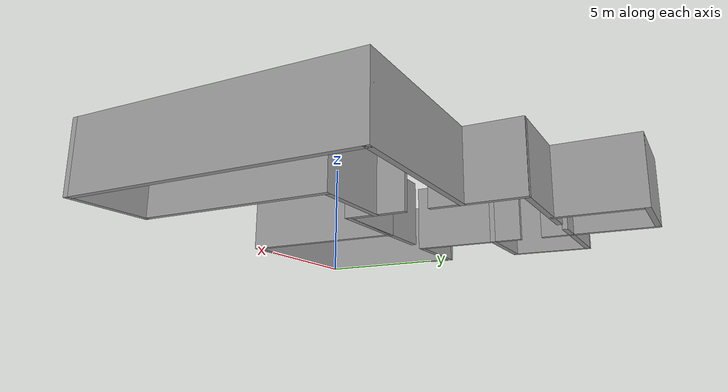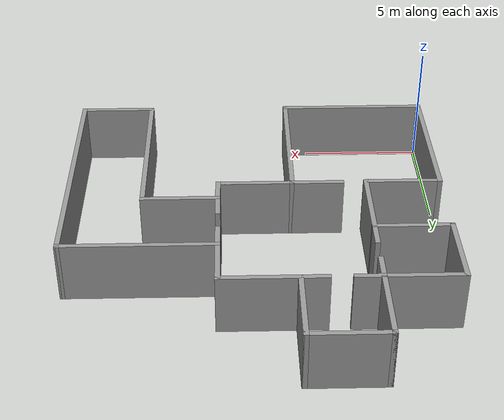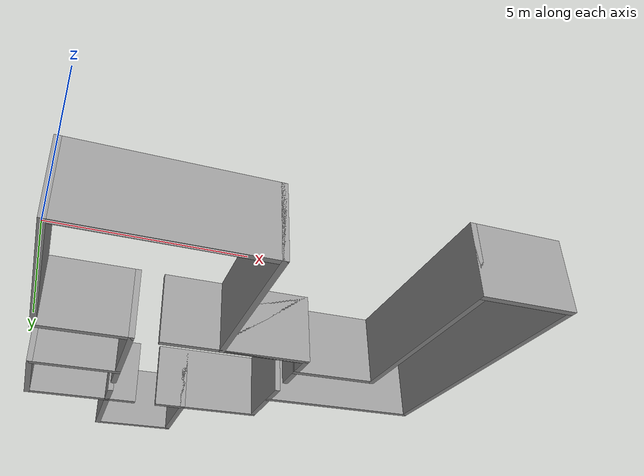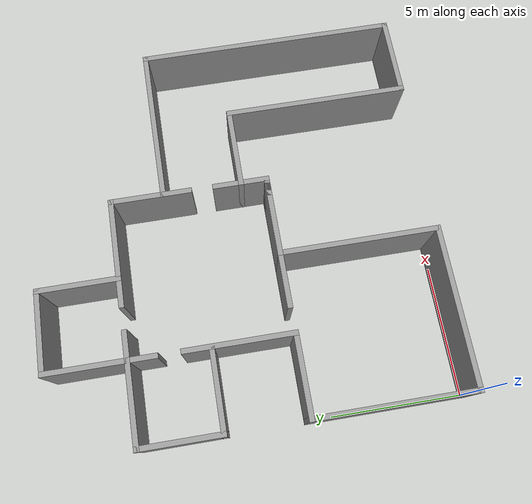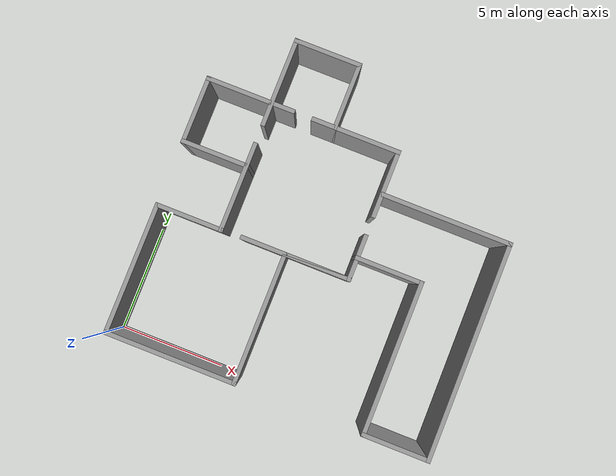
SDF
<?xml version='1.0'?>
<sdf version='1.6'>
  <model name='Floorplan'>
    <pose frame=''>7.5 7.5 0 0 -0 0</pose>
    <link name='Wall_0'>
      <collision name='Wall_0_Collision'>
        <geometry>
          <box>
            <size>6.2 0.2 2.5</size>
          </box>
        </geometry>
        <pose frame=''>0 0 1.25 0 -0 0</pose>
      </collision>
      <visual name='Wall_0_Visual'>
        <pose frame=''>0 0 1.25 0 -0 0</pose>
        <geometry>
          <box>
            <size>6.2 0.2 2.5</size>
          </box>
        </geometry>
        <material>
          <script>
            <uri>file://media/materials/scripts/gazebo.material</uri>
            <name>Gazebo/Grey</name>
          </script>
          <ambient>1 1 1 1</ambient>
        </material>
        <meta>
          <layer>0</layer>
        </meta>
      </visual>
      <pose frame=''>-4.5 -7.5 0 0 -0 0</pose>
    </link>
    <link name='Wall_10'>
      <collision name='Wall_10_Collision'>
        <geometry>
          <box>
            <size>3.2 0.2 2.5</size>
          </box>
        </geometry>
        <pose frame=''>0 0 1.25 0 -0 0</pose>
      </collision>
      <visual name='Wall_10_Visual'>
        <pose frame=''>0 0 1.25 0 -0 0</pose>
        <geometry>
          <box>
            <size>3.2 0.2 2.5</size>
          </box>
        </geometry>
        <material>
          <script>
            <uri>file://media/materials/scripts/gazebo.material</uri>
            <name>Gazebo/Grey</name>
          </script>
          <ambient>1 1 1 1</ambient>
        </material>
        <meta>
          <layer>0</layer>
        </meta>
      </visual>
      <pose frame=''>-6 -1.5345 0 0 -0 0</pose>
    </link>
    <link name='Wall_12'>
      <collision name='Wall_12_Collision'>
        <geometry>
          <box>
            <size>4.23452 0.2 2.5</size>
          </box>
        </geometry>
        <pose frame=''>0 0 1.25 0 -0 0</pose>
      </collision>
      <visual name='Wall_12_Visual'>
        <pose frame=''>0 0 1.25 0 -0 0</pose>
        <geometry>
          <box>
            <size>4.23452 0.2 2.5</size>
          </box>
        </geometry>
        <material>
          <script>
            <uri>file://media/materials/scripts/gazebo.material</uri>
            <name>Gazebo/Grey</name>
          </script>
          <ambient>1 1 1 1</ambient>
        </material>
        <meta>
          <layer>0</layer>
        </meta>
      </visual>
      <pose frame=''>-4.5 0.482753 0 0 -0 1.5708</pose>
    </link>
    <link name='Wall_14'>
      <collision name='Wall_14_Collision'>
        <geometry>
          <box>
            <size>3.2 0.2 2.5</size>
          </box>
        </geometry>
        <pose frame=''>0 0 1.25 0 -0 0</pose>
      </collision>
      <visual name='Wall_14_Visual'>
        <pose frame=''>0 0 1.25 0 -0 0</pose>
        <geometry>
          <box>
            <size>3.2 0.2 2.5</size>
          </box>
        </geometry>
        <material>
          <script>
            <uri>file://media/materials/scripts/gazebo.material</uri>
            <name>Gazebo/Grey</name>
          </script>
          <ambient>1 1 1 1</ambient>
        </material>
        <meta>
          <layer>0</layer>
        </meta>
      </visual>
      <pose frame=''>-6 1.5 0 0 -0 3.14159</pose>
    </link>
    <link name='Wall_16'>
      <collision name='Wall_16_Collision'>
        <geometry>
          <box>
            <size>3.2 0.2 2.5</size>
          </box>
        </geometry>
        <pose frame=''>0 0 1.25 0 -0 0</pose>
      </collision>
      <visual name='Wall_16_Visual'>
        <pose frame=''>0 0 1.25 0 -0 0</pose>
        <geometry>
          <box>
            <size>3.2 0.2 2.5</size>
          </box>
        </geometry>
        <material>
          <script>
            <uri>file://media/materials/scripts/gazebo.material</uri>
            <name>Gazebo/Grey</name>
          </script>
          <ambient>1 1 1 1</ambient>
        </material>
        <meta>
          <layer>0</layer>
        </meta>
      </visual>
      <pose frame=''>-7.5 3 0 0 -0 1.5708</pose>
    </link>
    <link name='Wall_18'>
      <collision name='Wall_18_Collision'>
        <geometry>
          <box>
            <size>3.2 0.2 2.5</size>
          </box>
        </geometry>
        <pose frame=''>0 0 1.25 0 -0 0</pose>
      </collision>
      <visual name='Wall_18_Visual'>
        <pose frame=''>0 0 1.25 0 -0 0</pose>
        <geometry>
          <box>
            <size>3.2 0.2 2.5</size>
          </box>
        </geometry>
        <material>
          <script>
            <uri>file://media/materials/scripts/gazebo.material</uri>
            <name>Gazebo/Grey</name>
          </script>
          <ambient>1 1 1 1</ambient>
        </material>
        <meta>
          <layer>0</layer>
        </meta>
      </visual>
      <pose frame=''>-6 4.5 0 0 -0 0</pose>
    </link>
    <link name='Wall_2'>
      <collision name='Wall_2_Collision'>
        <geometry>
          <box>
            <size>6.16551 0.2 2.5</size>
          </box>
        </geometry>
        <pose frame=''>0 0 1.25 0 -0 0</pose>
      </collision>
      <visual name='Wall_2_Visual'>
        <pose frame=''>0 0 1.25 0 -0 0</pose>
        <geometry>
          <box>
            <size>6.16551 0.2 2.5</size>
          </box>
        </geometry>
        <material>
          <script>
            <uri>file://media/materials/scripts/gazebo.material</uri>
            <name>Gazebo/Grey</name>
          </script>
          <ambient>1 1 1 1</ambient>
        </material>
        <meta>
          <layer>0</layer>
        </meta>
      </visual>
      <pose frame=''>-7.5 -4.51725 0 0 -0 1.5708</pose>
    </link>
    <link name='Wall_20'>
      <collision name='Wall_20_Collision'>
        <geometry>
          <box>
            <size>4.2 0.2 2.5</size>
          </box>
        </geometry>
        <pose frame=''>0 0 1.25 0 -0 0</pose>
      </collision>
      <visual name='Wall_20_Visual'>
        <pose frame=''>0 0 1.25 0 -0 0</pose>
        <geometry>
          <box>
            <size>4.2 0.2 2.5</size>
          </box>
        </geometry>
        <material>
          <script>
            <uri>file://media/materials/scripts/gazebo.material</uri>
            <name>Gazebo/Grey</name>
          </script>
          <ambient>1 1 1 1</ambient>
        </material>
        <meta>
          <layer>0</layer>
        </meta>
      </visual>
      <pose frame=''>-4.5 5.5 0 0 -0 1.5708</pose>
    </link>
    <link name='Wall_23'>
      <collision name='Wall_23_Collision'>
        <geometry>
          <box>
            <size>3.2 0.2 2.5</size>
          </box>
        </geometry>
        <pose frame=''>0 0 1.25 0 -0 0</pose>
      </collision>
      <visual name='Wall_23_Visual'>
        <pose frame=''>0 0 1.25 0 -0 0</pose>
        <geometry>
          <box>
            <size>3.2 0.2 2.5</size>
          </box>
        </geometry>
        <material>
          <script>
            <uri>file://media/materials/scripts/gazebo.material</uri>
            <name>Gazebo/Grey</name>
          </script>
          <ambient>1 1 1 1</ambient>
        </material>
        <meta>
          <layer>0</layer>
        </meta>
      </visual>
      <pose frame=''>-3 7.5 0 0 -0 0</pose>
    </link>
    <link name='Wall_25'>
      <collision name='Wall_25_Collision'>
        <geometry>
          <box>
            <size>3.2 0.2 2.5</size>
          </box>
        </geometry>
        <pose frame=''>0 0 1.25 0 -0 0</pose>
      </collision>
      <visual name='Wall_25_Visual'>
        <pose frame=''>0 0 1.25 0 -0 0</pose>
        <geometry>
          <box>
            <size>3.2 0.2 2.5</size>
          </box>
        </geometry>
        <material>
          <script>
            <uri>file://media/materials/scripts/gazebo.material</uri>
            <name>Gazebo/Grey</name>
          </script>
          <ambient>1 1 1 1</ambient>
        </material>
        <meta>
          <layer>0</layer>
        </meta>
      </visual>
      <pose frame=''>-1.5 6 0 0 -0 -1.5708</pose>
    </link>
    <link name='Wall_27'>
      <collision name='Wall_27_Collision'>
        <geometry>
          <box>
            <size>1.2 0.2 2.5</size>
          </box>
        </geometry>
        <pose frame=''>0 0 1.25 0 -0 0</pose>
      </collision>
      <visual name='Wall_27_Visual'>
        <pose frame=''>0 0 1.25 0 -0 0</pose>
        <geometry>
          <box>
            <size>1.2 0.2 2.5</size>
          </box>
        </geometry>
        <material>
          <script>
            <uri>file://media/materials/scripts/gazebo.material</uri>
            <name>Gazebo/Grey</name>
          </script>
          <ambient>1 1 1 1</ambient>
        </material>
        <meta>
          <layer>0</layer>
        </meta>
      </visual>
      <pose frame=''>-4 4.5 0 0 -0 0</pose>
    </link>
    <link name='Wall_29'>
      <collision name='Wall_29_Collision'>
        <geometry>
          <box>
            <size>4.2 0.2 2.5</size>
          </box>
        </geometry>
        <pose frame=''>0 0 1.25 0 -0 0</pose>
      </collision>
      <visual name='Wall_29_Visual'>
        <pose frame=''>0 0 1.25 0 -0 0</pose>
        <geometry>
          <box>
            <size>4.2 0.2 2.5</size>
          </box>
        </geometry>
        <material>
          <script>
            <uri>file://media/materials/scripts/gazebo.material</uri>
            <name>Gazebo/Grey</name>
          </script>
          <ambient>1 1 1 1</ambient>
        </material>
        <meta>
          <layer>0</layer>
        </meta>
      </visual>
      <pose frame=''>-0.5 4.5 0 0 -0 0</pose>
    </link>
    <link name='Wall_31'>
      <collision name='Wall_31_Collision'>
        <geometry>
          <box>
            <size>5.2 0.2 2.5</size>
          </box>
        </geometry>
        <pose frame=''>0 0 1.25 0 -0 0</pose>
      </collision>
      <visual name='Wall_31_Visual'>
        <pose frame=''>0 0 1.25 0 -0 0</pose>
        <geometry>
          <box>
            <size>5.2 0.2 2.5</size>
          </box>
        </geometry>
        <material>
          <script>
            <uri>file://media/materials/scripts/gazebo.material</uri>
            <name>Gazebo/Grey</name>
          </script>
          <ambient>1 1 1 1</ambient>
        </material>
        <meta>
          <layer>0</layer>
        </meta>
      </visual>
      <pose frame=''>-1 -1.5 0 0 -0 0</pose>
    </link>
    <link name='Wall_34'>
      <collision name='Wall_34_Collision'>
        <geometry>
          <box>
            <size>3.2 0.2 2.5</size>
          </box>
        </geometry>
        <pose frame=''>0 0 1.25 0 -0 0</pose>
      </collision>
      <visual name='Wall_34_Visual'>
        <pose frame=''>0 0 1.25 0 -0 0</pose>
        <geometry>
          <box>
            <size>3.2 0.2 2.5</size>
          </box>
        </geometry>
        <material>
          <script>
            <uri>file://media/materials/scripts/gazebo.material</uri>
            <name>Gazebo/Grey</name>
          </script>
          <ambient>1 1 1 1</ambient>
        </material>
        <meta>
          <layer>0</layer>
        </meta>
      </visual>
      <pose frame=''>3 -0.499997 0 0 -0 0</pose>
    </link>
    <link name='Wall_36'>
      <collision name='Wall_36_Collision'>
        <geometry>
          <box>
            <size>3.2 0.2 2.5</size>
          </box>
        </geometry>
        <pose frame=''>0 0 1.25 0 -0 0</pose>
      </collision>
      <visual name='Wall_36_Visual'>
        <pose frame=''>0 0 1.25 0 -0 0</pose>
        <geometry>
          <box>
            <size>3.2 0.2 2.5</size>
          </box>
        </geometry>
        <material>
          <script>
            <uri>file://media/materials/scripts/gazebo.material</uri>
            <name>Gazebo/Grey</name>
          </script>
          <ambient>1 1 1 1</ambient>
        </material>
        <meta>
          <layer>0</layer>
        </meta>
      </visual>
      <pose frame=''>1.5 3 0 0 -0 -1.5708</pose>
    </link>
    <link name='Wall_38'>
      <collision name='Wall_38_Collision'>
        <geometry>
          <box>
            <size>6.2 0.2 2.5</size>
          </box>
        </geometry>
        <pose frame=''>0 0 1.25 0 -0 0</pose>
      </collision>
      <visual name='Wall_38_Visual'>
        <pose frame=''>0 0 1.25 0 -0 0</pose>
        <geometry>
          <box>
            <size>6.2 0.2 2.5</size>
          </box>
        </geometry>
        <material>
          <script>
            <uri>file://media/materials/scripts/gazebo.material</uri>
            <name>Gazebo/Grey</name>
          </script>
          <ambient>1 1 1 1</ambient>
        </material>
        <meta>
          <layer>0</layer>
        </meta>
      </visual>
      <pose frame=''>4.5 2.5 0 0 -0 0</pose>
    </link>
    <link name='Wall_40'>
      <collision name='Wall_40_Collision'>
        <geometry>
          <box>
            <size>7.2 0.2 2.5</size>
          </box>
        </geometry>
        <pose frame=''>0 0 1.25 0 -0 0</pose>
      </collision>
      <visual name='Wall_40_Visual'>
        <pose frame=''>0 0 1.25 0 -0 0</pose>
        <geometry>
          <box>
            <size>7.2 0.2 2.5</size>
          </box>
        </geometry>
        <material>
          <script>
            <uri>file://media/materials/scripts/gazebo.material</uri>
            <name>Gazebo/Grey</name>
          </script>
          <ambient>1 1 1 1</ambient>
        </material>
        <meta>
          <layer>0</layer>
        </meta>
      </visual>
      <pose frame=''>4.5 -4 0 0 -0 -1.5708</pose>
    </link>
    <link name='Wall_42'>
      <collision name='Wall_42_Collision'>
        <geometry>
          <box>
            <size>10.2 0.2 2.5</size>
          </box>
        </geometry>
        <pose frame=''>0 0 1.25 0 -0 0</pose>
      </collision>
      <visual name='Wall_42_Visual'>
        <pose frame=''>0 0 1.25 0 -0 0</pose>
        <geometry>
          <box>
            <size>10.2 0.2 2.5</size>
          </box>
        </geometry>
        <material>
          <script>
            <uri>file://media/materials/scripts/gazebo.material</uri>
            <name>Gazebo/Grey</name>
          </script>
          <ambient>1 1 1 1</ambient>
        </material>
        <meta>
          <layer>0</layer>
        </meta>
      </visual>
      <pose frame=''>7.5 -2.5 0 0 -0 -1.5708</pose>
    </link>
    <link name='Wall_44'>
      <collision name='Wall_44_Collision'>
        <geometry>
          <box>
            <size>3.2 0.2 2.5</size>
          </box>
        </geometry>
        <pose frame=''>0 0 1.25 0 -0 0</pose>
      </collision>
      <visual name='Wall_44_Visual'>
        <pose frame=''>0 0 1.25 0 -0 0</pose>
        <geometry>
          <box>
            <size>3.2 0.2 2.5</size>
          </box>
        </geometry>
        <material>
          <script>
            <uri>file://media/materials/scripts/gazebo.material</uri>
            <name>Gazebo/Grey</name>
          </script>
          <ambient>1 1 1 1</ambient>
        </material>
        <meta>
          <layer>0</layer>
        </meta>
      </visual>
      <pose frame=''>6 -7.5 0 0 -0 0</pose>
    </link>
    <link name='Wall_6'>
      <collision name='Wall_6_Collision'>
        <geometry>
          <box>
            <size>6.2 0.2 2.5</size>
          </box>
        </geometry>
        <pose frame=''>0 0 1.25 0 -0 0</pose>
      </collision>
      <visual name='Wall_6_Visual'>
        <pose frame=''>0 0 1.25 0 -0 0</pose>
        <geometry>
          <box>
            <size>6.2 0.2 2.5</size>
          </box>
        </geometry>
        <material>
          <script>
            <uri>file://media/materials/scripts/gazebo.material</uri>
            <name>Gazebo/Grey</name>
          </script>
          <ambient>1 1 1 1</ambient>
        </material>
        <meta>
          <layer>0</layer>
        </meta>
      </visual>
      <pose frame=''>-1.5 -4.5 0 0 -0 1.5708</pose>
    </link>
    <link name='Wall_7'>
      <collision name='Wall_7_Collision'>
        <geometry>
          <box>
            <size>3.2 0.2 2.5</size>
          </box>
        </geometry>
        <pose frame=''>0 0 1.25 0 -0 0</pose>
      </collision>
      <visual name='Wall_7_Visual'>
        <pose frame=''>0 0 1.25 0 -0 0</pose>
        <geometry>
          <box>
            <size>3.2 0.2 2.5</size>
          </box>
        </geometry>
        <material>
          <script>
            <uri>file://media/materials/scripts/gazebo.material</uri>
            <name>Gazebo/Grey</name>
          </script>
          <ambient>1 1 1 1</ambient>
        </material>
        <meta>
          <layer>0</layer>
        </meta>
      </visual>
      <pose frame=''>0 -1.5 0 0 -0 0</pose>
    </link>
    <link name='Wall_8'>
      <collision name='Wall_8_Collision'>
        <geometry>
          <box>
            <size>2.2 0.2 2.5</size>
          </box>
        </geometry>
        <pose frame=''>0 0 1.25 0 -0 0</pose>
      </collision>
      <visual name='Wall_8_Visual'>
        <pose frame=''>0 0 1.25 0 -0 0</pose>
        <geometry>
          <box>
            <size>2.2 0.2 2.5</size>
          </box>
        </geometry>
        <material>
          <script>
            <uri>file://media/materials/scripts/gazebo.material</uri>
            <name>Gazebo/Grey</name>
          </script>
          <ambient>1 1 1 1</ambient>
        </material>
        <meta>
          <layer>0</layer>
        </meta>
      </visual>
      <pose frame=''>1.5 -0.499997 0 0 -0 1.5708</pose>
    </link>
    <static>1</static>
  </model>
</sdf>
